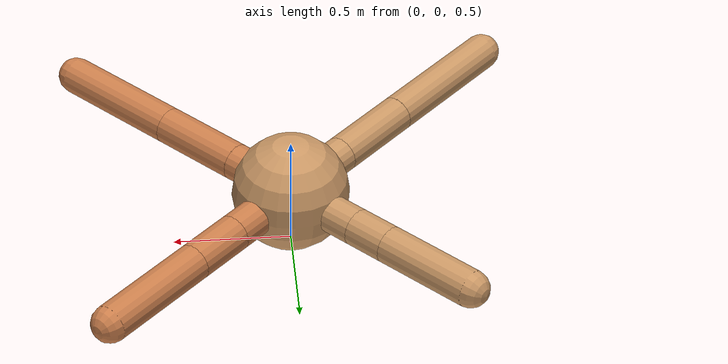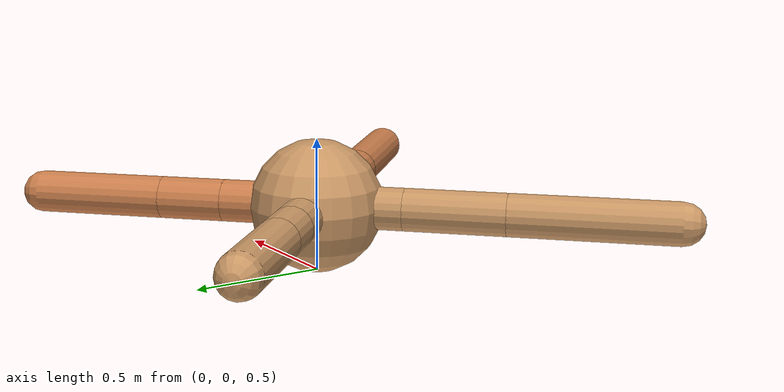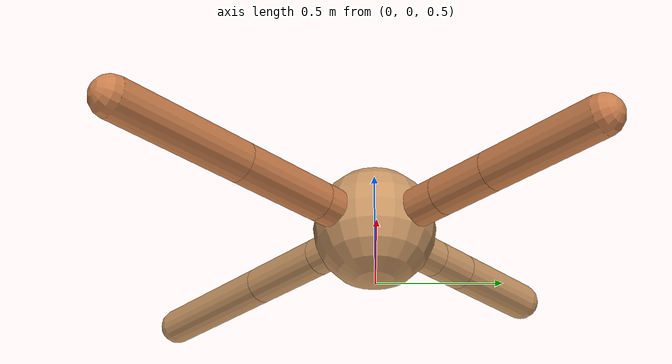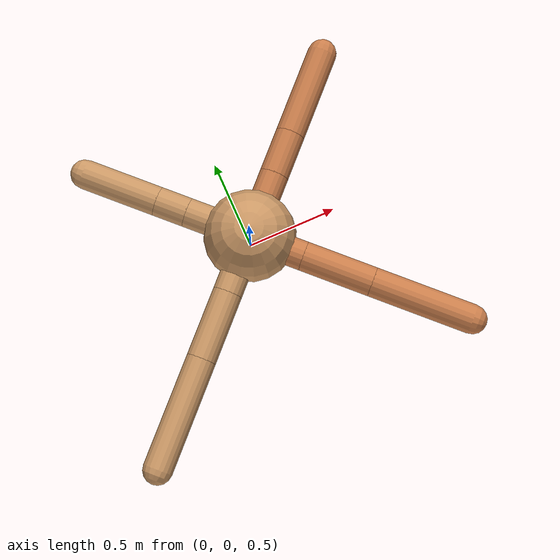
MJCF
<mujoco model="ant">
  <compiler angle="degree" coordinate="local" inertiafromgeom="true" />
  <option integrator="RK4" timestep="0.01" />
  <custom>
    <numeric data="0.0 0.0 0.55 1.0 0.0 0.0 0.0 0.0 1.0 0.0 -1.0 0.0 -1.0 0.0 1.0" name="init_qpos" />
  </custom>
  <default>
    <joint armature="1" damping="1" limited="true" />
    <geom conaffinity="0" condim="3" density="5.0" friction="1.5 0.1 0.1" margin="0.01" rgba="0.8 0.6 0.4 1" />
  </default>
  <worldbody>
    <body name="torso" pos="0 0 0.75">
      <geom name="torso_geom" pos="0 0 0" size="0.25" type="sphere" />

      <body name="front_left_leg" pos="0 0 0">
        <geom fromto="0.0 0.0 0.0 0.2544878815829669 0.2544878815829669 0.0" name="aux_1_geom" size="0.08" type="capsule" rgba=".8 .5 .3 1" />
        <body name="aux_1" pos="0.2544878815829669 0.2544878815829669 0.0">
          <joint axis="0 0 1" name="hip_1" pos="0.0 0.0 0.0" range="-40 40" type="hinge" />
          <geom fromto="0.0 0.0 0.0 0.17293122567363586 0.17293122567363586 0.0" name="left_leg_geom" size="0.08" type="capsule" rgba=".8 .5 .3 1" />
          <body pos="0.17293122567363586 0.17293122567363586 0.0" name="front_left_foot">
            <joint axis="-1 1 0" name="ankle_1" pos="0.0 0.0 0.0" range="30 100" type="hinge" />
            <geom fromto="0.0 0.0 0.0 0.34900771897199084 0.34900771897199084 0.0" name="left_ankle_geom" size="0.08" type="capsule" rgba=".8 .5 .3 1" />
          </body>
        </body>
      </body>
      <body name="front_right_leg" pos="0 0 0">
        <geom fromto="0.0 0.0 0.0 -0.2545472636119669 0.2545472636119669 0.0" name="aux_2_geom" size="0.08" type="capsule" />
        <body name="aux_2" pos="-0.2545472636119669 0.2545472636119669 0.0">
          <joint axis="0 0 1" name="hip_2" pos="0.0 0.0 0.0" range="-40 40" type="hinge" />
          <geom fromto="0.0 0.0 0.0 -0.1213983985372473 0.1213983985372473 0.0" name="right_leg_geom" size="0.08" type="capsule" />
          <body pos="-0.1213983985372473 0.1213983985372473 0.0" name="front_right_foot">
            <joint axis="1 1 0" name="ankle_2" pos="0.0 0.0 0.0" range="-100 -30" type="hinge" />
            <geom fromto="0.0 0.0 0.0 -0.29893978999484033 0.29893978999484033 0.0" name="right_ankle_geom" size="0.08" type="capsule" />
          </body>
        </body>
      </body>
      <body name="left_back_leg" pos="0 0 0">
        <geom fromto="0.0 0.0 0.0 -0.23420557757261173 -0.23420557757261173 0.0" name="aux_3_geom" size="0.08" type="capsule" />
        <body name="aux_3" pos="-0.23420557757261173 -0.23420557757261173 0.0">
          <joint axis="0 0 1" name="hip_3" pos="0.0 0.0 0.0" range="-40 40" type="hinge" />
          <geom fromto="0.0 0.0 0.0 -0.2671184614827022 -0.2671184614827022 0.0" name="back_leg_geom" size="0.08" type="capsule" />
          <body pos="-0.2671184614827022 -0.2671184614827022 0.0" name="left_back_foot">
            <joint axis="-1 1 0" name="ankle_3" pos="0.0 0.0 0.0" range="-100 -30" type="hinge" />
            <geom fromto="0.0 0.0 0.0 -0.4343260855634246 -0.4343260855634246 0.0" name="third_ankle_geom" size="0.08" type="capsule" />
          </body>
        </body>
      </body>
      <body name="right_back_leg" pos="0 0 0">
        <geom fromto="0.0 0.0 0.0 0.2169810064016455 -0.2169810064016455 0.0" name="aux_4_geom" size="0.08" type="capsule" rgba=".8 .5 .3 1" />
        <body name="aux_4" pos="0.2169810064016455 -0.2169810064016455 0.0">
          <joint axis="0 0 1" name="hip_4" pos="0.0 0.0 0.0" range="-40 40" type="hinge" />
          <geom fromto="0.0 0.0 0.0 0.2760680648507545 -0.2760680648507545 0.0" name="rightback_leg_geom" size="0.08" type="capsule" rgba=".8 .5 .3 1" />
          <body pos="0.2760680648507545 -0.2760680648507545 0.0" name="right_back_foot">
            <joint axis="1 1 0" name="ankle_4" pos="0.0 0.0 0.0" range="30 100" type="hinge" />
            <geom fromto="0.0 0.0 0.0 0.3976414885375274 -0.3976414885375274 0.0" name="fourth_ankle_geom" size="0.08" type="capsule" rgba=".8 .5 .3 1" />
          </body>
        </body>
      </body>
    </body>
  </worldbody>
  <actuator>
    <motor ctrllimited="true" ctrlrange="-1.0 1.0" joint="hip_4" gear="150" />
    <motor ctrllimited="true" ctrlrange="-1.0 1.0" joint="ankle_4" gear="150" />
    <motor ctrllimited="true" ctrlrange="-1.0 1.0" joint="hip_1" gear="150" />
    <motor ctrllimited="true" ctrlrange="-1.0 1.0" joint="ankle_1" gear="150" />
    <motor ctrllimited="true" ctrlrange="-1.0 1.0" joint="hip_2" gear="150" />
    <motor ctrllimited="true" ctrlrange="-1.0 1.0" joint="ankle_2" gear="150" />
    <motor ctrllimited="true" ctrlrange="-1.0 1.0" joint="hip_3" gear="150" />
    <motor ctrllimited="true" ctrlrange="-1.0 1.0" joint="ankle_3" gear="150" />
  </actuator>
</mujoco>
